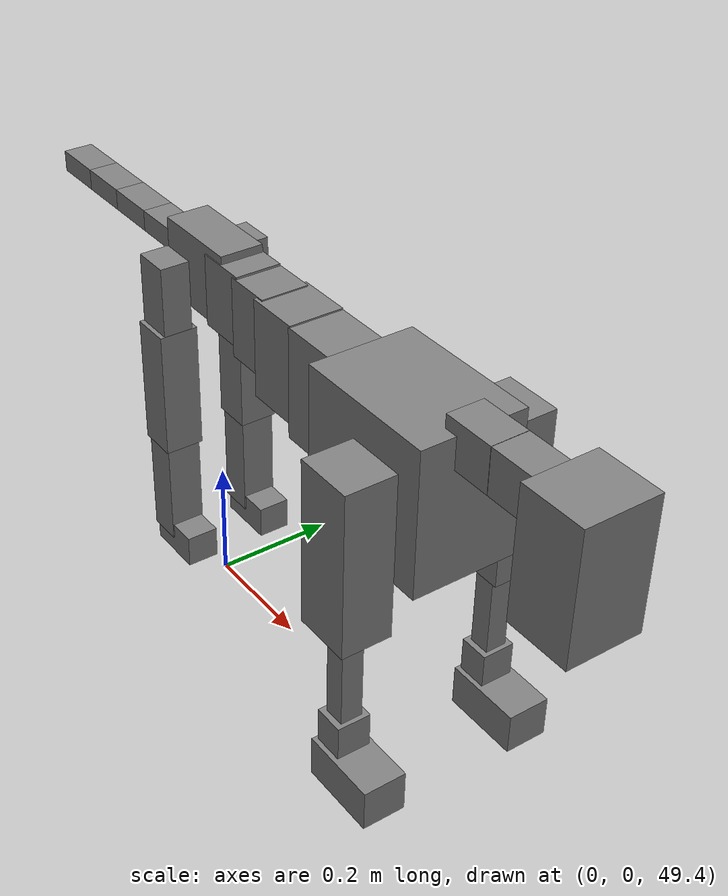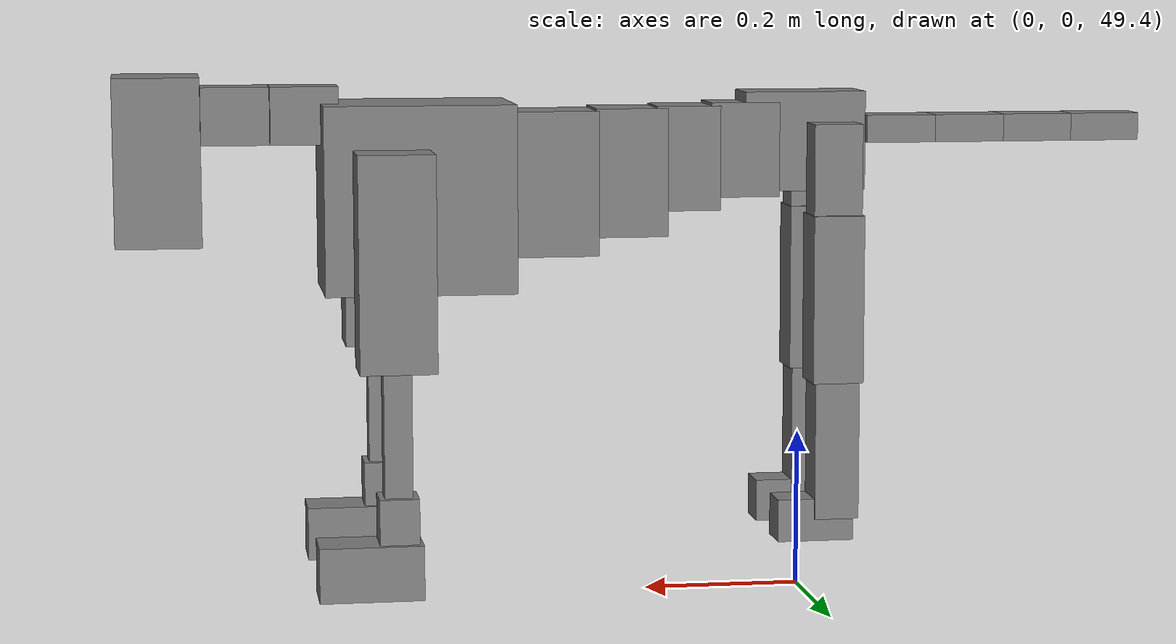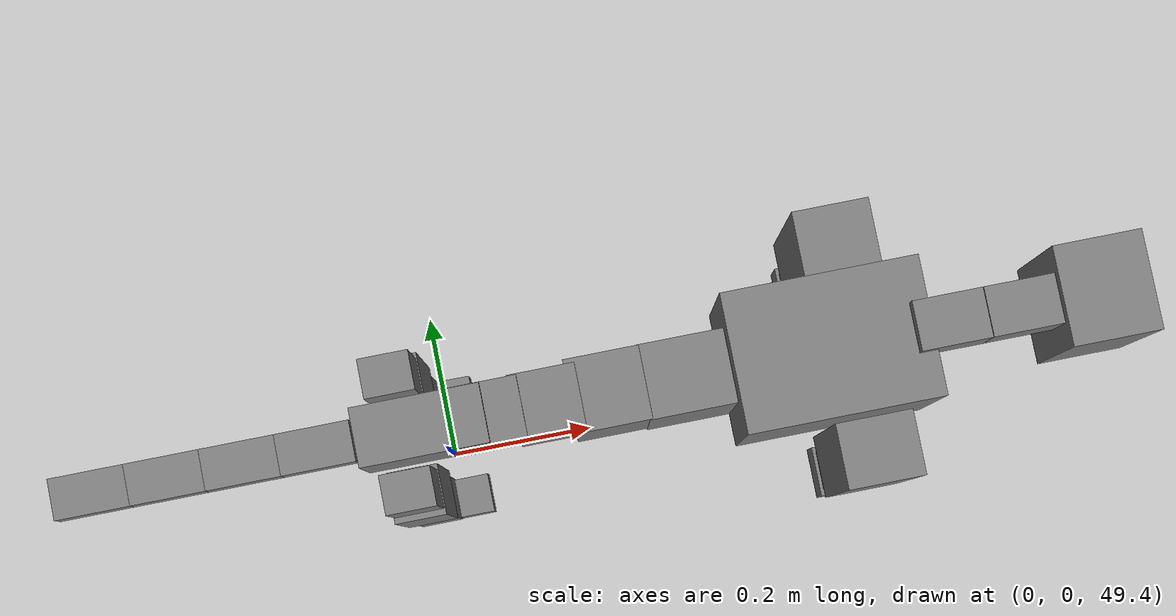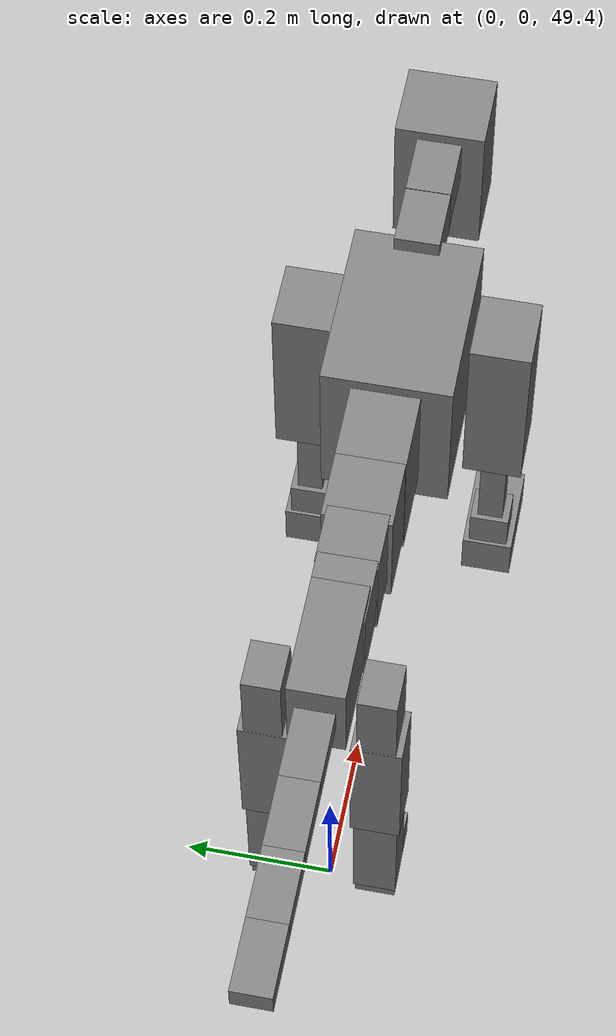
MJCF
<mujoco model="dog">

    <default>
        <joint armature="0.02" stiffness="1" damping="0.2" limited="true"/>
        <geom condim="3" friction="1 0.05 0.05" margin="0.01"/>
        <motor ctrllimited="true" ctrlrange="-1.0 1.0" forcelimited="true" gear="50"/>
    </default>

    <compiler inertiafromgeom="true" angle="radian"/>

    <option timestep="0.016" iterations="50" tolerance="1e-10" solver="Newton" jacobian="dense" cone="pyramidal"/>

    <size nconmax="20000" njmax="60000" nstack="5000000"/>
    <visual>
        <map force="0.1" zfar="30"/>
        <rgba haze="0.15 0.25 0.35 1"/>
        <quality shadowsize="2048"/>
        <global offwidth="800" offheight="800"/>
    </visual>

    <asset>
        <texture type="skybox" builtin="gradient" rgb1="0.3 0.5 0.7" rgb2="0 0 0" width="512" height="512"/>
        <texture name="texplane" type="2d" builtin="checker" rgb1=".2 .3 .4" rgb2=".1 0.15 0.2" width="512" height="512"
                 mark="cross" markrgb=".8 .8 .8"/>
        <texture name="texgeom" type="cube" builtin="flat" mark="cross" width="127" height="1278" rgb1="0.8 0.6 0.4"
                 rgb2="0.8 0.6 0.4" markrgb="1 1 1" random="0.01"/>

        <material name="matplane" reflectance="0.3" texture="texplane" texrepeat="1 1" texuniform="true"/>
        <material name="matgeom" texture="texgeom" texuniform="true" rgba="0.8 0.6 .4 1"/>
    </asset>

    <worldbody>
        <geom name="floor" pos="0 0 0" size="0 0 .25" type="plane" material="matplane" condim="3"/>

        <light directional="false" diffuse=".2 .2 .2" specular="0 0 0" pos="0 0 5" dir="0 0 -1" castshadow="false"/>
        <light mode="targetbodycom" target="torso" directional="false" diffuse=".8 .8 .8" specular="0.3 0.3 0.3"
               pos="0 0 4.0" dir="0 0 -1"/>

        <body name="root" pos="0 0 50">
            <freejoint name="root_1"/>
            <geom type="box" pos="0 0 -0.02" size="0.0774  0.0358  0.063" density="2030"/>

            <body name="spine1" pos="0.054 0 0">
                <joint name="spine1_y" axis="0 1 0" range="0 0.7" limited="true"/>
                <geom type="box" pos="0.02375 0 -0.03" size="0.04375  0.0375  0.05985" density="2030"/>

                <body name="spine2" pos="0.0612 0 0">
                    <joint name="spine2_y" axis="0 1 0" range="-0.15 0.15" limited="true"/>
                    <geom type="box" pos="0.03555  0  -0.04" size="0.04055  0.039  0.06615" density="2030"/>

                    <body name="spine3" pos="0.0730 0 0">
                        <joint name="spine3_y" axis="0 1 0" range="-0.15 0.15" limited="true"/>
                        <geom type="box" pos="0.03555  0  -0.057" size="0.04555  0.0445  0.081" density="2030"/>

                        <body name="spine4" pos="0.0780 0 0">
                            <joint name="spine4_y" axis="0 1 0" range="-0.15 0.15" limited="true"/>
                            <geom type="box" pos="0.05265  0  -0.07" size="0.05265  0.045  0.09135" density="2030"/>

                            <body name="torso" pos="0.1082 0 0">
                                <joint name="torso_y" axis="0 1 0" range="-0.15 0.15" limited="true"/>
                                <geom type="box" pos="0.11925  0  -0.085" size="0.11925  0.085  0.11745"
                                      density="2030"/>

                                <body name="neck1" pos="0.2160  0   0.0180">
                                    <joint name="neck1_y" axis="0 1 0" range="-1.2  -1" limited="true"/>
                                    <geom type="box" pos="0.0423  0  0" size="0.0423  0.03  0.036" density="2325"/>

                                    <body name="neck2" pos="0.0853  0  0">
                                        <joint name="neck2_y" axis="0 1 0" range="0.1  0" limited="true"/>
                                        <geom type="box" pos="0.0423  0  0" size="0.0423  0.03  0.036" density="2325"/>

                                        <body name="head" pos="0.0853  0  0">
                                            <joint name="head_y" axis="0 1 0" range="-0.3  -0.2" limited="true"/>
                                            <geom type="box" pos="0.0531  0  -0.055" size="0.0531  0.06  0.1044"
                                                  density="4030"/>

                                        </body>
                                    </body>
                                </body>

                                <body name="front_shoulder" pos="0.156  0   -0.0480">
                                    <joint name="front_shoulder_y" axis="0 1 0" range="-1 1.5" limited="true"/>
                                    <geom type="box" pos="0 0.13 -0.1067" size="0.0473  0.0404  0.1334" density="1158"/>
                                    <geom type="box" pos="0 -0.13 -0.1067" size="0.0473  0.0404  0.1334"
                                          density="1158"/>

                                    <body name="front_elbow" pos="0  0  -0.2134">
                                        <joint name="front_elbow_y" axis="0 1 0" range="-2 0" limited="true"/>
                                        <geom type="box" pos="0 0.13 -0.0977" size="0.0174  0.0177  0.0977"
                                              density="1081"/>
                                        <geom type="box" pos="0 -0.13 -0.0977" size="0.0174  0.0177  0.0977"
                                              density="1081"/>

                                        <body name="front_wrist" pos="0  0  -0.1955">
                                            <joint name="front_wrist_y" axis="0 1 0" range="-0.2 0" limited="true"/>
                                            <geom type="box" pos="0 0.13 -0.0294" size="0.0245  0.0272  0.0425"
                                                  density="1664"/>
                                            <geom type="box" pos="0 -0.13 -0.0294" size="0.0245  0.0272  0.0425"
                                                  density="1664"/>

                                            <body name="front_finger_end" pos="0  0  -0.0587">
                                                <joint name="front_finger_y" axis="0 1 0" range="-0.4 1"
                                                       limited="true"/>
                                                <geom type="box" pos="0.0350  0.13  -0.0191"
                                                      size="0.0642  0.0350  0.0341" density="1515"/>
                                                <geom type="box" pos="0.0350  -0.13  -0.0191"
                                                      size="0.0642  0.0350  0.0341" density="1515"/>

                                            </body>

                                        </body>
                                    </body>
                                </body>

                            </body>
                        </body>
                    </body>
                </body>
            </body>

            <body name="back_hip" pos="-0.03 0 -0.018">
                <joint name="back_hip_y" axis="0 1 0" range="-1.5 0.3" limited="true"/>
                <geom type="box" pos="0 0.07 -0.0538" size="0.0308  0.0242  0.0766" density="1154"/>
                <geom type="box" pos="0 -0.07 -0.0538" size="0.0308  0.0242  0.0766" density="1154"/>

                <body name="back_knee" pos="0  0  -0.1076">
                    <joint name="back_knee_y" axis="0 1 0" range="0 2.8" limited="true"/>
                    <geom type="box" pos="0 0.07 -0.0906" size="0.0323  0.0319  0.1062" density="1227"/>
                    <geom type="box" pos="0 -0.07 -0.0906" size="0.0323  0.0319  0.1062" density="1227"/>

                    <body name="back_ankle" pos="0  0  -0.1813">
                        <joint name="back_ankle_y" axis="0 1 0" range="-2.2 0" limited="true"/>
                        <geom type="box" pos="0 0.07 -0.0895" size="0.0283  0.0283  0.1008" density="1284"/>
                        <geom type="box" pos="0 -0.07 -0.0895" size="0.0283  0.0283  0.1008" density="1284"/>

                        <body name="back_toe_end" pos="0  0  -0.1791">
                            <joint name="back_toe_y" axis="0 1 0" range="-0.4 1" limited="true"/>
                            <geom type="box" pos="0.0265  0.07  -0.0119" size="0.0487  0.0265  0.0269" density="1515"/>
                            <geom type="box" pos="0.0265  -0.07  -0.0119" size="0.0487  0.0265  0.0269" density="1515"/>

                        </body>
                    </body>
                </body>
            </body>

            <body name="tail1" pos="-0.074 0 -0.006">
                <joint name="tail1_y" axis="0 1 0" range="-0.2 0.2" limited="true"/>
                <geom type="box" pos="-0.0536  0  0" size="0.045  0.025  0.0175" density="1587"/>

                <body name="tail2" pos="-0.09 0 0">
                    <joint name="tail2_y" axis="0 1 0" range="-0.2 0.2" limited="true"/>
                    <geom type="box" pos="-0.0536  0  0" size="0.045  0.025  0.0175" density="1587"/>

                    <body name="tail3" pos="-0.09 0 0">
                        <joint name="tail3_y" axis="0 1 0" range="-0.2 0.2" limited="true"/>
                        <geom type="box" pos="-0.0536  0  0" size="0.045  0.025  0.0175" density="1587"/>

                        <body name="tail4" pos="-0.09 0 0">
                            <joint name="tail4_y" axis="0 1 0" range="-0.2 0.2" limited="true"/>
                            <geom type="box" pos="-0.0536  0  0" size="0.045  0.025  0.0175" density="1587"/>

                        </body>
                    </body>
                </body>
            </body>
        </body>
    </worldbody>

    <actuator>
        <motor joint="spine1_y" forcerange="-150 150     "/>
        <motor joint="spine2_y" forcerange="-150 150     "/>
        <motor joint="spine3_y" forcerange="-150 150     "/>
        <motor joint="spine4_y" forcerange="-150 150     "/>
        <motor joint="torso_y" forcerange="-150 150     "/>
        <motor joint="neck1_y" forcerange="-100 100       "/>
        <motor joint="neck2_y" forcerange="-100 100       "/>
        <motor joint="head_y" forcerange="-150 150       "/>
        <motor joint="front_shoulder_y" forcerange="-184.19 185.25"/>
        <motor joint="front_elbow_y" forcerange="-104.06 125.03"/>
        <motor joint="front_wrist_y" forcerange="-93.31 124.19"/>
        <motor joint="front_finger_y" forcerange="-54.29 92.33"/>
        <motor joint="back_hip_y" forcerange="-245.17 277.04"/>
        <motor joint="back_knee_y" forcerange="-371.84 291.82"/>
        <motor joint="back_angle_y" forcerange="-192.78 159.46"/>
        <motor joint="back_toe_y" forcerange="-111.31 21.08"/>
        <motor joint="tail1_y" forcerange="-50 50     "/>
        <motor joint="tail2_y" forcerange="-50 50     "/>
        <motor joint="tail3_y" forcerange="-50 50     "/>
        <motor joint="tail4_y" forcerange="-50 50     "/>
    </actuator>
</mujoco>
